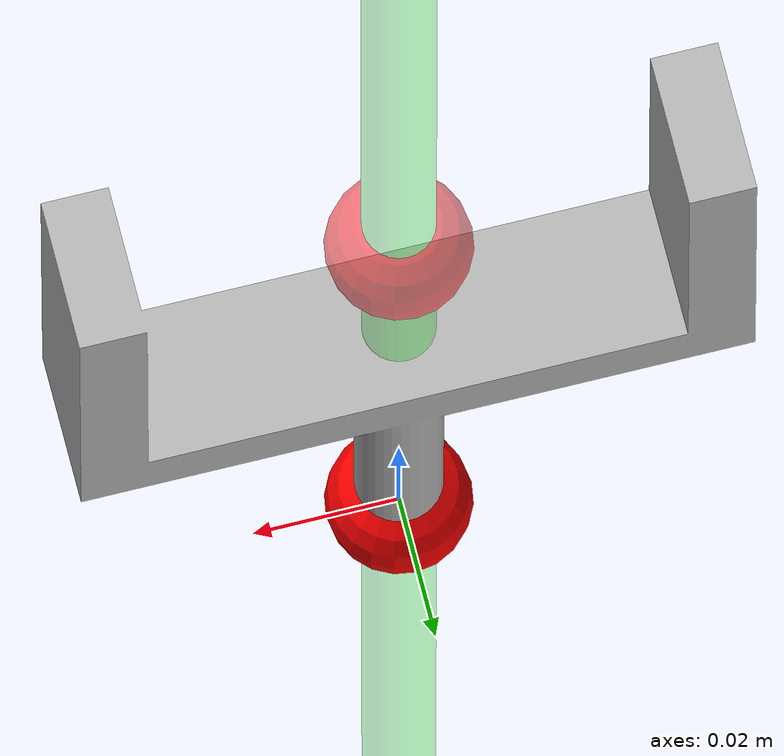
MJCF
<mujoco model="hook_hand">
    <asset>
        <mesh name="hook_mesh" file="meshes/hook.stl" scale="0.1 0.1 0.1" />
    </asset>
    <actuator>
        <!-- Add actuator definitions if your gripper has movable parts -->
    </actuator>
    <worldbody>
        <body name="hook_gripper" pos="0 0 0" quat="0.707107 0 0 -0.707107">
            <site name="ft_frame" pos="0 0 0" size="0.01 0.01 0.01" rgba="1 0 0 1" type="sphere" group="1"/>

            <inertial pos="0 0 0" mass="0.1" diaginertia="0.01 0.01 0.01"/>

            <geom pos="0 0 0" type="mesh" contype="0" conaffinity="0" group="1" mesh="hook_mesh" name="hook_visual" rgba="0.7 0.7 0.7 1"/>
            <geom pos="0 0 0" type="mesh" mesh="hook_mesh" group="0" name="hook_collision"/>

            <!-- End effector reference frame -->
            <body name="eef" pos="0 0 0.1" quat="1 0 0 0">
                <site name="grip_site" pos="0 0 0" size="0.01 0.01 0.01" rgba="1 0 0 0.5" type="sphere" group="1"/>
                <site name="ee_x" pos="0.1 0 0" size="0.005 .1" quat="0.707105 0 0.707108 0" rgba="1 0 0 0" type="cylinder" group="1"/>
                <site name="ee_y" pos="0 0.1 0" size="0.005 .1" quat="0.707105 0.707108 0 0" rgba="0 1 0 0" type="cylinder" group="1"/>
                <site name="ee_z" pos="0 0 0.1" size="0.005 .1" quat="1 0 0 0" rgba="0 0 1 0" type="cylinder" group="1"/>
                <site name="grip_site_cylinder" pos="0 0 0" size="0.005 10" rgba="0 1 0 0.3" type="cylinder" group="1"/>
            </body>
        </body>
    </worldbody>
    <sensor>
        <force name="force_ee" site="ft_frame"/>
        <torque name="torque_ee" site="ft_frame"/>
    </sensor>
</mujoco>
